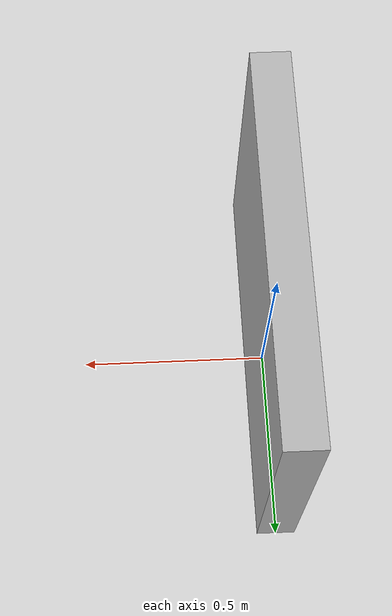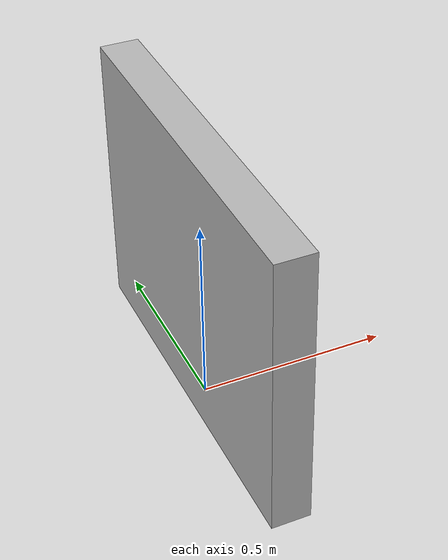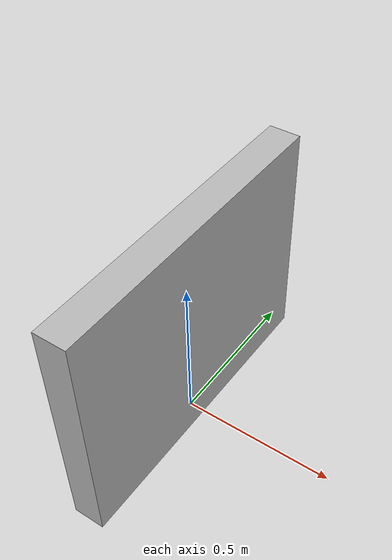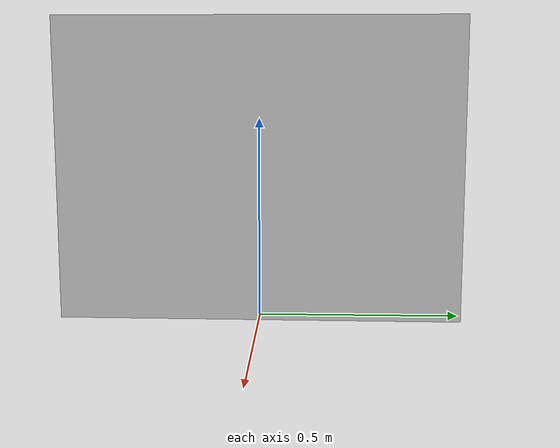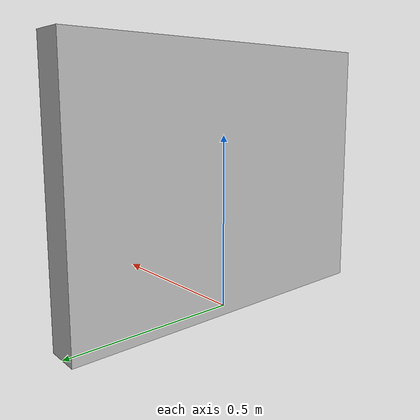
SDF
<?xml version="1.0" ?>
<sdf version="1.4">
	<model name="challenge_wall">
    <pose>0 0 0.375 0 0 0</pose>
    <static>true</static>
    <link name="link">
      <collision name="collision">
        <geometry>
          <box>
            <size>0.1 1 0.75</size>
          </box>
        </geometry>
      </collision>
      <visual name="visual">
        <geometry>
          <box>
            <size>0.1 1 0.75</size>
          </box>
        </geometry>
      </visual>
    </link>
	</model>
</sdf>
